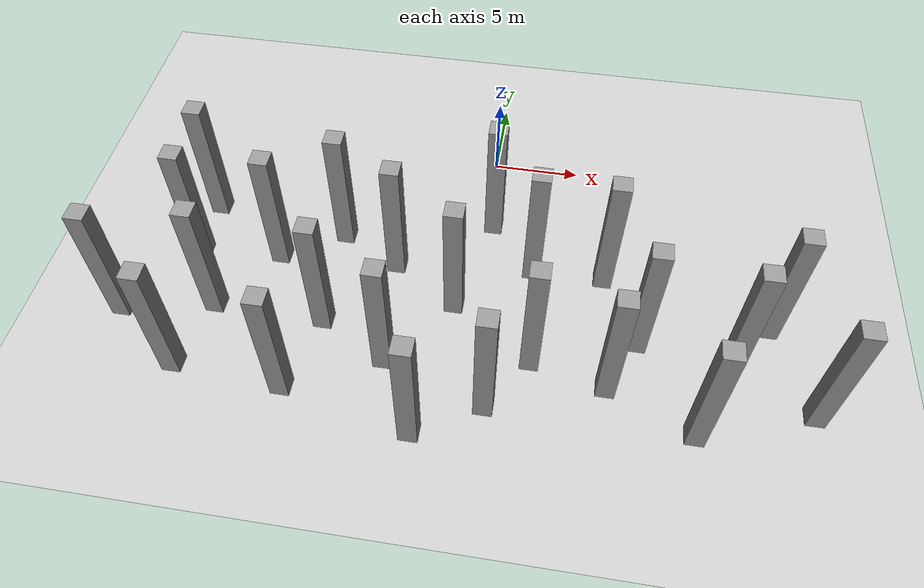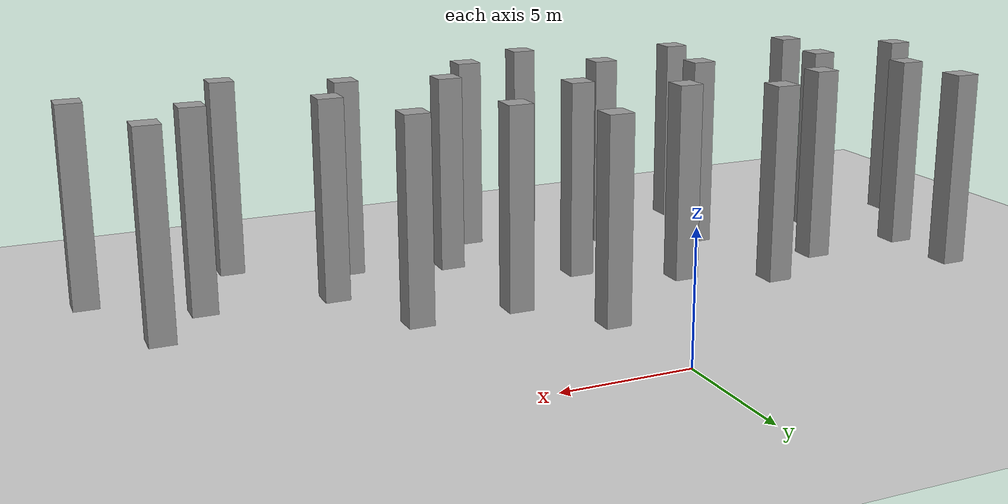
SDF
<sdf version="1.7">
 <world name="default">
  <model name="ground_plane">
   <static>1</static>
   <link name="link">
    <collision name="collision">
     <geometry><plane><normal>0 0 1</normal><size>100 100</size></plane></geometry>
     <surface>
      <contact><collide_bitmask>65535</collide_bitmask></contact>
      <friction><ode><mu>100</mu><mu2>50</mu2></ode></friction>
     </surface>
    </collision>
    <visual name="visual">
     <cast_shadows>0</cast_shadows>
     <geometry><plane><normal>0 0 1</normal><size>100 100</size></plane></geometry>
     <material>
      <script><uri>file://media/materials/scripts/gazebo.material</uri><name>Gazebo/Grey</name></script>
     </material>
    </visual>
   </link>
  </model>
  <model name="unit_box_static_clone_8">
   <link name="link">
    <inertial>
     <mass>1</mass>
     <inertia>
      <ixx>0.166667</ixx>
      <ixy>0</ixy>
      <ixz>0</ixz>
      <iyy>0.166667</iyy>
      <iyz>0</iyz>
      <izz>0.166667</izz>
     </inertia>
    </inertial>
    <visual name="visual">
     <geometry><box><size>1 1 8</size></box></geometry>
     <material>
      <script><name>Gazebo/Grey</name><uri>file://media/materials/scripts/gazebo.material</uri></script>
      <shader type="pixel"/>
     </material>
    </visual>
    <collision name="collision">
     <geometry><box><size>1 1 8</size></box></geometry>
     <surface>
      <friction>
       <ode><mu>1</mu><mu2>1</mu2><fdir1>0 0 0</fdir1><slip1>0</slip1><slip2>0</slip2></ode>
       <torsional>
        <coefficient>1</coefficient>
        <patch_radius>0</patch_radius>
        <surface_radius>0</surface_radius>
        <use_patch_radius>1</use_patch_radius>
        <ode><slip>0</slip></ode>
       </torsional>
      </friction>
      <bounce><restitution_coefficient>0</restitution_coefficient><threshold>1e+06</threshold></bounce>
      <contact>
       <collide_without_contact>0</collide_without_contact>
       <collide_without_contact_bitmask>1</collide_without_contact_bitmask>
       <collide_bitmask>1</collide_bitmask>
       <ode>
        <soft_cfm>0</soft_cfm>
        <soft_erp>0.2</soft_erp>
        <kp>1e+13</kp>
        <kd>1</kd>
        <max_vel>0.01</max_vel>
        <min_depth>0</min_depth>
       </ode>
       <bullet>
        <split_impulse>1</split_impulse>
        <split_impulse_penetration_threshold>-0.01</split_impulse_penetration_threshold>
        <soft_cfm>0</soft_cfm>
        <soft_erp>0.2</soft_erp>
        <kp>1e+13</kp>
        <kd>1</kd>
       </bullet>
      </contact>
     </surface>
    </collision>
   </link>
   <static>1</static>
   <pose>0.430119 -5 4 0 -0 0</pose>
  </model>
  <model name="unit_box_static_clone_15">
   <link name="link">
    <inertial>
     <mass>1</mass>
     <inertia>
      <ixx>0.166667</ixx>
      <ixy>0</ixy>
      <ixz>0</ixz>
      <iyy>0.166667</iyy>
      <iyz>0</iyz>
      <izz>0.166667</izz>
     </inertia>
    </inertial>
    <visual name="visual">
     <geometry><box><size>1 1 8</size></box></geometry>
     <material>
      <script><name>Gazebo/Grey</name><uri>file://media/materials/scripts/gazebo.material</uri></script>
      <shader type="pixel"/>
     </material>
    </visual>
    <collision name="collision">
     <geometry><box><size>1 1 8</size></box></geometry>
     <surface>
      <friction>
       <ode><mu>1</mu><mu2>1</mu2><fdir1>0 0 0</fdir1><slip1>0</slip1><slip2>0</slip2></ode>
       <torsional>
        <coefficient>1</coefficient>
        <patch_radius>0</patch_radius>
        <surface_radius>0</surface_radius>
        <use_patch_radius>1</use_patch_radius>
        <ode><slip>0</slip></ode>
       </torsional>
      </friction>
      <bounce><restitution_coefficient>0</restitution_coefficient><threshold>1e+06</threshold></bounce>
      <contact>
       <collide_without_contact>0</collide_without_contact>
       <collide_without_contact_bitmask>1</collide_without_contact_bitmask>
       <collide_bitmask>1</collide_bitmask>
       <ode>
        <soft_cfm>0</soft_cfm>
        <soft_erp>0.2</soft_erp>
        <kp>1e+13</kp>
        <kd>1</kd>
        <max_vel>0.01</max_vel>
        <min_depth>0</min_depth>
       </ode>
       <bullet>
        <split_impulse>1</split_impulse>
        <split_impulse_penetration_threshold>-0.01</split_impulse_penetration_threshold>
        <soft_cfm>0</soft_cfm>
        <soft_erp>0.2</soft_erp>
        <kp>1e+13</kp>
        <kd>1</kd>
       </bullet>
      </contact>
     </surface>
    </collision>
   </link>
   <static>1</static>
   <pose>7 -8 4 0 -0 0</pose>
  </model>
  <model name="unit_box_static_clone_16">
   <link name="link">
    <inertial>
     <mass>1</mass>
     <inertia>
      <ixx>0.166667</ixx>
      <ixy>0</ixy>
      <ixz>0</ixz>
      <iyy>0.166667</iyy>
      <iyz>0</iyz>
      <izz>0.166667</izz>
     </inertia>
    </inertial>
    <visual name="visual">
     <geometry><box><size>1 1 8</size></box></geometry>
     <material>
      <script><name>Gazebo/Grey</name><uri>file://media/materials/scripts/gazebo.material</uri></script>
      <shader type="pixel"/>
     </material>
    </visual>
    <collision name="collision">
     <geometry><box><size>1 1 8</size></box></geometry>
     <surface>
      <friction>
       <ode><mu>1</mu><mu2>1</mu2><fdir1>0 0 0</fdir1><slip1>0</slip1><slip2>0</slip2></ode>
       <torsional>
        <coefficient>1</coefficient>
        <patch_radius>0</patch_radius>
        <surface_radius>0</surface_radius>
        <use_patch_radius>1</use_patch_radius>
        <ode><slip>0</slip></ode>
       </torsional>
      </friction>
      <bounce><restitution_coefficient>0</restitution_coefficient><threshold>1e+06</threshold></bounce>
      <contact>
       <collide_without_contact>0</collide_without_contact>
       <collide_without_contact_bitmask>1</collide_without_contact_bitmask>
       <collide_bitmask>1</collide_bitmask>
       <ode>
        <soft_cfm>0</soft_cfm>
        <soft_erp>0.2</soft_erp>
        <kp>1e+13</kp>
        <kd>1</kd>
        <max_vel>0.01</max_vel>
        <min_depth>0</min_depth>
       </ode>
       <bullet>
        <split_impulse>1</split_impulse>
        <split_impulse_penetration_threshold>-0.01</split_impulse_penetration_threshold>
        <soft_cfm>0</soft_cfm>
        <soft_erp>0.2</soft_erp>
        <kp>1e+13</kp>
        <kd>1</kd>
       </bullet>
      </contact>
     </surface>
    </collision>
   </link>
   <static>1</static>
   <pose>3 -8 4 0 -0 0</pose>
  </model>
  <model name="unit_box_static_clone_17">
   <link name="link">
    <inertial>
     <mass>1</mass>
     <inertia>
      <ixx>0.166667</ixx>
      <ixy>0</ixy>
      <ixz>0</ixz>
      <iyy>0.166667</iyy>
      <iyz>0</iyz>
      <izz>0.166667</izz>
     </inertia>
    </inertial>
    <visual name="visual">
     <geometry><box><size>1 1 8</size></box></geometry>
     <material>
      <script><name>Gazebo/Grey</name><uri>file://media/materials/scripts/gazebo.material</uri></script>
      <shader type="pixel"/>
     </material>
    </visual>
    <collision name="collision">
     <geometry><box><size>1 1 8</size></box></geometry>
     <surface>
      <friction>
       <ode><mu>1</mu><mu2>1</mu2><fdir1>0 0 0</fdir1><slip1>0</slip1><slip2>0</slip2></ode>
       <torsional>
        <coefficient>1</coefficient>
        <patch_radius>0</patch_radius>
        <surface_radius>0</surface_radius>
        <use_patch_radius>1</use_patch_radius>
        <ode><slip>0</slip></ode>
       </torsional>
      </friction>
      <bounce><restitution_coefficient>0</restitution_coefficient><threshold>1e+06</threshold></bounce>
      <contact>
       <collide_without_contact>0</collide_without_contact>
       <collide_without_contact_bitmask>1</collide_without_contact_bitmask>
       <collide_bitmask>1</collide_bitmask>
       <ode>
        <soft_cfm>0</soft_cfm>
        <soft_erp>0.2</soft_erp>
        <kp>1e+13</kp>
        <kd>1</kd>
        <max_vel>0.01</max_vel>
        <min_depth>0</min_depth>
       </ode>
       <bullet>
        <split_impulse>1</split_impulse>
        <split_impulse_penetration_threshold>-0.01</split_impulse_penetration_threshold>
        <soft_cfm>0</soft_cfm>
        <soft_erp>0.2</soft_erp>
        <kp>1e+13</kp>
        <kd>1</kd>
       </bullet>
      </contact>
     </surface>
    </collision>
   </link>
   <static>1</static>
   <pose>-4.6344 -8.74545 4 0 -0 0</pose>
  </model>
  <model name="unit_box_static_clone_18">
   <link name="link">
    <inertial>
     <mass>1</mass>
     <inertia>
      <ixx>0.166667</ixx>
      <ixy>0</ixy>
      <ixz>0</ixz>
      <iyy>0.166667</iyy>
      <iyz>0</iyz>
      <izz>0.166667</izz>
     </inertia>
    </inertial>
    <visual name="visual">
     <geometry><box><size>1 1 8</size></box></geometry>
     <material>
      <script><name>Gazebo/Grey</name><uri>file://media/materials/scripts/gazebo.material</uri></script>
      <shader type="pixel"/>
     </material>
    </visual>
    <collision name="collision">
     <geometry><box><size>1 1 8</size></box></geometry>
     <surface>
      <friction>
       <ode><mu>1</mu><mu2>1</mu2><fdir1>0 0 0</fdir1><slip1>0</slip1><slip2>0</slip2></ode>
       <torsional>
        <coefficient>1</coefficient>
        <patch_radius>0</patch_radius>
        <surface_radius>0</surface_radius>
        <use_patch_radius>1</use_patch_radius>
        <ode><slip>0</slip></ode>
       </torsional>
      </friction>
      <bounce><restitution_coefficient>0</restitution_coefficient><threshold>1e+06</threshold></bounce>
      <contact>
       <collide_without_contact>0</collide_without_contact>
       <collide_without_contact_bitmask>1</collide_without_contact_bitmask>
       <collide_bitmask>1</collide_bitmask>
       <ode>
        <soft_cfm>0</soft_cfm>
        <soft_erp>0.2</soft_erp>
        <kp>1e+13</kp>
        <kd>1</kd>
        <max_vel>0.01</max_vel>
        <min_depth>0</min_depth>
       </ode>
       <bullet>
        <split_impulse>1</split_impulse>
        <split_impulse_penetration_threshold>-0.01</split_impulse_penetration_threshold>
        <soft_cfm>0</soft_cfm>
        <soft_erp>0.2</soft_erp>
        <kp>1e+13</kp>
        <kd>1</kd>
       </bullet>
      </contact>
     </surface>
    </collision>
   </link>
   <static>1</static>
   <pose>-11.3473 -9.08592 4 0 -0 0</pose>
  </model>
  <model name="unit_box_static_clone_19">
   <link name="link">
    <inertial>
     <mass>1</mass>
     <inertia>
      <ixx>0.166667</ixx>
      <ixy>0</ixy>
      <ixz>0</ixz>
      <iyy>0.166667</iyy>
      <iyz>0</iyz>
      <izz>0.166667</izz>
     </inertia>
    </inertial>
    <visual name="visual">
     <geometry><box><size>1 1 8</size></box></geometry>
     <material>
      <script><name>Gazebo/Grey</name><uri>file://media/materials/scripts/gazebo.material</uri></script>
      <shader type="pixel"/>
     </material>
    </visual>
    <collision name="collision">
     <geometry><box><size>1 1 8</size></box></geometry>
     <surface>
      <friction>
       <ode><mu>1</mu><mu2>1</mu2><fdir1>0 0 0</fdir1><slip1>0</slip1><slip2>0</slip2></ode>
       <torsional>
        <coefficient>1</coefficient>
        <patch_radius>0</patch_radius>
        <surface_radius>0</surface_radius>
        <use_patch_radius>1</use_patch_radius>
        <ode><slip>0</slip></ode>
       </torsional>
      </friction>
      <bounce><restitution_coefficient>0</restitution_coefficient><threshold>1e+06</threshold></bounce>
      <contact>
       <collide_without_contact>0</collide_without_contact>
       <collide_without_contact_bitmask>1</collide_without_contact_bitmask>
       <collide_bitmask>1</collide_bitmask>
       <ode>
        <soft_cfm>0</soft_cfm>
        <soft_erp>0.2</soft_erp>
        <kp>1e+13</kp>
        <kd>1</kd>
        <max_vel>0.01</max_vel>
        <min_depth>0</min_depth>
       </ode>
       <bullet>
        <split_impulse>1</split_impulse>
        <split_impulse_penetration_threshold>-0.01</split_impulse_penetration_threshold>
        <soft_cfm>0</soft_cfm>
        <soft_erp>0.2</soft_erp>
        <kp>1e+13</kp>
        <kd>1</kd>
       </bullet>
      </contact>
     </surface>
    </collision>
   </link>
   <static>1</static>
   <pose>-7.86466 -13.1113 4 0 -0 0</pose>
  </model>
  <model name="unit_box_static_clone_20">
   <link name="link">
    <inertial>
     <mass>1</mass>
     <inertia>
      <ixx>0.166667</ixx>
      <ixy>0</ixy>
      <ixz>0</ixz>
      <iyy>0.166667</iyy>
      <iyz>0</iyz>
      <izz>0.166667</izz>
     </inertia>
    </inertial>
    <visual name="visual">
     <geometry><box><size>1 1 8</size></box></geometry>
     <material>
      <script><name>Gazebo/Grey</name><uri>file://media/materials/scripts/gazebo.material</uri></script>
      <shader type="pixel"/>
     </material>
    </visual>
    <collision name="collision">
     <geometry><box><size>1 1 8</size></box></geometry>
     <surface>
      <friction>
       <ode><mu>1</mu><mu2>1</mu2><fdir1>0 0 0</fdir1><slip1>0</slip1><slip2>0</slip2></ode>
       <torsional>
        <coefficient>1</coefficient>
        <patch_radius>0</patch_radius>
        <surface_radius>0</surface_radius>
        <use_patch_radius>1</use_patch_radius>
        <ode><slip>0</slip></ode>
       </torsional>
      </friction>
      <bounce><restitution_coefficient>0</restitution_coefficient><threshold>1e+06</threshold></bounce>
      <contact>
       <collide_without_contact>0</collide_without_contact>
       <collide_without_contact_bitmask>1</collide_without_contact_bitmask>
       <collide_bitmask>1</collide_bitmask>
       <ode>
        <soft_cfm>0</soft_cfm>
        <soft_erp>0.2</soft_erp>
        <kp>1e+13</kp>
        <kd>1</kd>
        <max_vel>0.01</max_vel>
        <min_depth>0</min_depth>
       </ode>
       <bullet>
        <split_impulse>1</split_impulse>
        <split_impulse_penetration_threshold>-0.01</split_impulse_penetration_threshold>
        <soft_cfm>0</soft_cfm>
        <soft_erp>0.2</soft_erp>
        <kp>1e+13</kp>
        <kd>1</kd>
       </bullet>
      </contact>
     </surface>
    </collision>
   </link>
   <static>1</static>
   <pose>-4.12448 -15.073 4 0 -0 0</pose>
  </model>
  <model name="unit_box_static_clone_21">
   <link name="link">
    <inertial>
     <mass>1</mass>
     <inertia>
      <ixx>0.166667</ixx>
      <ixy>0</ixy>
      <ixz>0</ixz>
      <iyy>0.166667</iyy>
      <iyz>0</iyz>
      <izz>0.166667</izz>
     </inertia>
    </inertial>
    <visual name="visual">
     <geometry><box><size>1 1 8</size></box></geometry>
     <material>
      <script><name>Gazebo/Grey</name><uri>file://media/materials/scripts/gazebo.material</uri></script>
      <shader type="pixel"/>
     </material>
    </visual>
    <collision name="collision">
     <geometry><box><size>1 1 8</size></box></geometry>
     <surface>
      <friction>
       <ode><mu>1</mu><mu2>1</mu2><fdir1>0 0 0</fdir1><slip1>0</slip1><slip2>0</slip2></ode>
       <torsional>
        <coefficient>1</coefficient>
        <patch_radius>0</patch_radius>
        <surface_radius>0</surface_radius>
        <use_patch_radius>1</use_patch_radius>
        <ode><slip>0</slip></ode>
       </torsional>
      </friction>
      <bounce><restitution_coefficient>0</restitution_coefficient><threshold>1e+06</threshold></bounce>
      <contact>
       <collide_without_contact>0</collide_without_contact>
       <collide_without_contact_bitmask>1</collide_without_contact_bitmask>
       <collide_bitmask>1</collide_bitmask>
       <ode>
        <soft_cfm>0</soft_cfm>
        <soft_erp>0.2</soft_erp>
        <kp>1e+13</kp>
        <kd>1</kd>
        <max_vel>0.01</max_vel>
        <min_depth>0</min_depth>
       </ode>
       <bullet>
        <split_impulse>1</split_impulse>
        <split_impulse_penetration_threshold>-0.01</split_impulse_penetration_threshold>
        <soft_cfm>0</soft_cfm>
        <soft_erp>0.2</soft_erp>
        <kp>1e+13</kp>
        <kd>1</kd>
       </bullet>
      </contact>
     </surface>
    </collision>
   </link>
   <static>1</static>
   <pose>-1 -11 4 0 -0 0</pose>
  </model>
  <model name="unit_box_static_clone_22">
   <link name="link">
    <inertial>
     <mass>1</mass>
     <inertia>
      <ixx>0.166667</ixx>
      <ixy>0</ixy>
      <ixz>0</ixz>
      <iyy>0.166667</iyy>
      <iyz>0</iyz>
      <izz>0.166667</izz>
     </inertia>
    </inertial>
    <visual name="visual">
     <geometry><box><size>1 1 8</size></box></geometry>
     <material>
      <script><name>Gazebo/Grey</name><uri>file://media/materials/scripts/gazebo.material</uri></script>
      <shader type="pixel"/>
     </material>
    </visual>
    <collision name="collision">
     <geometry><box><size>1 1 8</size></box></geometry>
     <surface>
      <friction>
       <ode><mu>1</mu><mu2>1</mu2><fdir1>0 0 0</fdir1><slip1>0</slip1><slip2>0</slip2></ode>
       <torsional>
        <coefficient>1</coefficient>
        <patch_radius>0</patch_radius>
        <surface_radius>0</surface_radius>
        <use_patch_radius>1</use_patch_radius>
        <ode><slip>0</slip></ode>
       </torsional>
      </friction>
      <bounce><restitution_coefficient>0</restitution_coefficient><threshold>1e+06</threshold></bounce>
      <contact>
       <collide_without_contact>0</collide_without_contact>
       <collide_without_contact_bitmask>1</collide_without_contact_bitmask>
       <collide_bitmask>1</collide_bitmask>
       <ode>
        <soft_cfm>0</soft_cfm>
        <soft_erp>0.2</soft_erp>
        <kp>1e+13</kp>
        <kd>1</kd>
        <max_vel>0.01</max_vel>
        <min_depth>0</min_depth>
       </ode>
       <bullet>
        <split_impulse>1</split_impulse>
        <split_impulse_penetration_threshold>-0.01</split_impulse_penetration_threshold>
        <soft_cfm>0</soft_cfm>
        <soft_erp>0.2</soft_erp>
        <kp>1e+13</kp>
        <kd>1</kd>
       </bullet>
      </contact>
     </surface>
    </collision>
   </link>
   <static>1</static>
   <pose>3.47998 -14 4 0 -0 0</pose>
  </model>
  <model name="unit_box_static_clone_23">
   <link name="link">
    <inertial>
     <mass>1</mass>
     <inertia>
      <ixx>0.166667</ixx>
      <ixy>0</ixy>
      <ixz>0</ixz>
      <iyy>0.166667</iyy>
      <iyz>0</iyz>
      <izz>0.166667</izz>
     </inertia>
    </inertial>
    <visual name="visual">
     <geometry><box><size>1 1 8</size></box></geometry>
     <material>
      <script><name>Gazebo/Grey</name><uri>file://media/materials/scripts/gazebo.material</uri></script>
      <shader type="pixel"/>
     </material>
    </visual>
    <collision name="collision">
     <geometry><box><size>1 1 8</size></box></geometry>
     <surface>
      <friction>
       <ode><mu>1</mu><mu2>1</mu2><fdir1>0 0 0</fdir1><slip1>0</slip1><slip2>0</slip2></ode>
       <torsional>
        <coefficient>1</coefficient>
        <patch_radius>0</patch_radius>
        <surface_radius>0</surface_radius>
        <use_patch_radius>1</use_patch_radius>
        <ode><slip>0</slip></ode>
       </torsional>
      </friction>
      <bounce><restitution_coefficient>0</restitution_coefficient><threshold>1e+06</threshold></bounce>
      <contact>
       <collide_without_contact>0</collide_without_contact>
       <collide_without_contact_bitmask>1</collide_without_contact_bitmask>
       <collide_bitmask>1</collide_bitmask>
       <ode>
        <soft_cfm>0</soft_cfm>
        <soft_erp>0.2</soft_erp>
        <kp>1e+13</kp>
        <kd>1</kd>
        <max_vel>0.01</max_vel>
        <min_depth>0</min_depth>
       </ode>
       <bullet>
        <split_impulse>1</split_impulse>
        <split_impulse_penetration_threshold>-0.01</split_impulse_penetration_threshold>
        <soft_cfm>0</soft_cfm>
        <soft_erp>0.2</soft_erp>
        <kp>1e+13</kp>
        <kd>1</kd>
       </bullet>
      </contact>
     </surface>
    </collision>
   </link>
   <static>1</static>
   <pose>9 -12 4 0 -0 0</pose>
  </model>
  <model name="unit_box_static_clone_24">
   <link name="link">
    <inertial>
     <mass>1</mass>
     <inertia>
      <ixx>0.166667</ixx>
      <ixy>0</ixy>
      <ixz>0</ixz>
      <iyy>0.166667</iyy>
      <iyz>0</iyz>
      <izz>0.166667</izz>
     </inertia>
    </inertial>
    <visual name="visual">
     <geometry><box><size>1 1 8</size></box></geometry>
     <material>
      <script><name>Gazebo/Grey</name><uri>file://media/materials/scripts/gazebo.material</uri></script>
      <shader type="pixel"/>
     </material>
    </visual>
    <collision name="collision">
     <geometry><box><size>1 1 8</size></box></geometry>
     <surface>
      <friction>
       <ode><mu>1</mu><mu2>1</mu2><fdir1>0 0 0</fdir1><slip1>0</slip1><slip2>0</slip2></ode>
       <torsional>
        <coefficient>1</coefficient>
        <patch_radius>0</patch_radius>
        <surface_radius>0</surface_radius>
        <use_patch_radius>1</use_patch_radius>
        <ode><slip>0</slip></ode>
       </torsional>
      </friction>
      <bounce><restitution_coefficient>0</restitution_coefficient><threshold>1e+06</threshold></bounce>
      <contact>
       <collide_without_contact>0</collide_without_contact>
       <collide_without_contact_bitmask>1</collide_without_contact_bitmask>
       <collide_bitmask>1</collide_bitmask>
       <ode>
        <soft_cfm>0</soft_cfm>
        <soft_erp>0.2</soft_erp>
        <kp>1e+13</kp>
        <kd>1</kd>
        <max_vel>0.01</max_vel>
        <min_depth>0</min_depth>
       </ode>
       <bullet>
        <split_impulse>1</split_impulse>
        <split_impulse_penetration_threshold>-0.01</split_impulse_penetration_threshold>
        <soft_cfm>0</soft_cfm>
        <soft_erp>0.2</soft_erp>
        <kp>1e+13</kp>
        <kd>1</kd>
       </bullet>
      </contact>
     </surface>
    </collision>
   </link>
   <static>1</static>
   <pose>12 -17 4 0 -0 0</pose>
  </model>
  <model name="unit_box_static_clone_25">
   <link name="link">
    <inertial>
     <mass>1</mass>
     <inertia>
      <ixx>0.166667</ixx>
      <ixy>0</ixy>
      <ixz>0</ixz>
      <iyy>0.166667</iyy>
      <iyz>0</iyz>
      <izz>0.166667</izz>
     </inertia>
    </inertial>
    <visual name="visual">
     <geometry><box><size>1 1 8</size></box></geometry>
     <material>
      <script><name>Gazebo/Grey</name><uri>file://media/materials/scripts/gazebo.material</uri></script>
      <shader type="pixel"/>
     </material>
    </visual>
    <collision name="collision">
     <geometry><box><size>1 1 8</size></box></geometry>
     <surface>
      <friction>
       <ode><mu>1</mu><mu2>1</mu2><fdir1>0 0 0</fdir1><slip1>0</slip1><slip2>0</slip2></ode>
       <torsional>
        <coefficient>1</coefficient>
        <patch_radius>0</patch_radius>
        <surface_radius>0</surface_radius>
        <use_patch_radius>1</use_patch_radius>
        <ode><slip>0</slip></ode>
       </torsional>
      </friction>
      <bounce><restitution_coefficient>0</restitution_coefficient><threshold>1e+06</threshold></bounce>
      <contact>
       <collide_without_contact>0</collide_without_contact>
       <collide_without_contact_bitmask>1</collide_without_contact_bitmask>
       <collide_bitmask>1</collide_bitmask>
       <ode>
        <soft_cfm>0</soft_cfm>
        <soft_erp>0.2</soft_erp>
        <kp>1e+13</kp>
        <kd>1</kd>
        <max_vel>0.01</max_vel>
        <min_depth>0</min_depth>
       </ode>
       <bullet>
        <split_impulse>1</split_impulse>
        <split_impulse_penetration_threshold>-0.01</split_impulse_penetration_threshold>
        <soft_cfm>0</soft_cfm>
        <soft_erp>0.2</soft_erp>
        <kp>1e+13</kp>
        <kd>1</kd>
       </bullet>
      </contact>
     </surface>
    </collision>
   </link>
   <static>1</static>
   <pose>14 -12.5036 4 0 -0 0</pose>
  </model>
  <model name="unit_box_static_clone_26">
   <link name="link">
    <inertial>
     <mass>1</mass>
     <inertia>
      <ixx>0.166667</ixx>
      <ixy>0</ixy>
      <ixz>0</ixz>
      <iyy>0.166667</iyy>
      <iyz>0</iyz>
      <izz>0.166667</izz>
     </inertia>
    </inertial>
    <visual name="visual">
     <geometry><box><size>1 1 8</size></box></geometry>
     <material>
      <script><name>Gazebo/Grey</name><uri>file://media/materials/scripts/gazebo.material</uri></script>
      <shader type="pixel"/>
     </material>
    </visual>
    <collision name="collision">
     <geometry><box><size>1 1 8</size></box></geometry>
     <surface>
      <friction>
       <ode><mu>1</mu><mu2>1</mu2><fdir1>0 0 0</fdir1><slip1>0</slip1><slip2>0</slip2></ode>
       <torsional>
        <coefficient>1</coefficient>
        <patch_radius>0</patch_radius>
        <surface_radius>0</surface_radius>
        <use_patch_radius>1</use_patch_radius>
        <ode><slip>0</slip></ode>
       </torsional>
      </friction>
      <bounce><restitution_coefficient>0</restitution_coefficient><threshold>1e+06</threshold></bounce>
      <contact>
       <collide_without_contact>0</collide_without_contact>
       <collide_without_contact_bitmask>1</collide_without_contact_bitmask>
       <collide_bitmask>1</collide_bitmask>
       <ode>
        <soft_cfm>0</soft_cfm>
        <soft_erp>0.2</soft_erp>
        <kp>1e+13</kp>
        <kd>1</kd>
        <max_vel>0.01</max_vel>
        <min_depth>0</min_depth>
       </ode>
       <bullet>
        <split_impulse>1</split_impulse>
        <split_impulse_penetration_threshold>-0.01</split_impulse_penetration_threshold>
        <soft_cfm>0</soft_cfm>
        <soft_erp>0.2</soft_erp>
        <kp>1e+13</kp>
        <kd>1</kd>
       </bullet>
      </contact>
     </surface>
    </collision>
   </link>
   <static>1</static>
   <pose>16 -10 4 0 -0 0</pose>
  </model>
  <model name="unit_box_static_clone_35">
   <link name="link">
    <inertial>
     <mass>1</mass>
     <inertia>
      <ixx>0.166667</ixx>
      <ixy>0</ixy>
      <ixz>0</ixz>
      <iyy>0.166667</iyy>
      <iyz>0</iyz>
      <izz>0.166667</izz>
     </inertia>
    </inertial>
    <visual name="visual">
     <geometry><box><size>1 1 8</size></box></geometry>
     <material>
      <script><name>Gazebo/Grey</name><uri>file://media/materials/scripts/gazebo.material</uri></script>
      <shader type="pixel"/>
     </material>
    </visual>
    <collision name="collision">
     <geometry><box><size>1 1 8</size></box></geometry>
     <surface>
      <friction>
       <ode><mu>1</mu><mu2>1</mu2><fdir1>0 0 0</fdir1><slip1>0</slip1><slip2>0</slip2></ode>
       <torsional>
        <coefficient>1</coefficient>
        <patch_radius>0</patch_radius>
        <surface_radius>0</surface_radius>
        <use_patch_radius>1</use_patch_radius>
        <ode><slip>0</slip></ode>
       </torsional>
      </friction>
      <bounce><restitution_coefficient>0</restitution_coefficient><threshold>1e+06</threshold></bounce>
      <contact>
       <collide_without_contact>0</collide_without_contact>
       <collide_without_contact_bitmask>1</collide_without_contact_bitmask>
       <collide_bitmask>1</collide_bitmask>
       <ode>
        <soft_cfm>0</soft_cfm>
        <soft_erp>0.2</soft_erp>
        <kp>1e+13</kp>
        <kd>1</kd>
        <max_vel>0.01</max_vel>
        <min_depth>0</min_depth>
       </ode>
       <bullet>
        <split_impulse>1</split_impulse>
        <split_impulse_penetration_threshold>-0.01</split_impulse_penetration_threshold>
        <soft_cfm>0</soft_cfm>
        <soft_erp>0.2</soft_erp>
        <kp>1e+13</kp>
        <kd>1</kd>
       </bullet>
      </contact>
     </surface>
    </collision>
   </link>
   <static>1</static>
   <pose>-16 -9.41863 4 0 -0 0</pose>
  </model>
  <model name="unit_box_static_clone_36">
   <link name="link">
    <inertial>
     <mass>1</mass>
     <inertia>
      <ixx>0.166667</ixx>
      <ixy>0</ixy>
      <ixz>0</ixz>
      <iyy>0.166667</iyy>
      <iyz>0</iyz>
      <izz>0.166667</izz>
     </inertia>
    </inertial>
    <visual name="visual">
     <geometry><box><size>1 1 8</size></box></geometry>
     <material>
      <script><name>Gazebo/Grey</name><uri>file://media/materials/scripts/gazebo.material</uri></script>
      <shader type="pixel"/>
     </material>
    </visual>
    <collision name="collision">
     <geometry><box><size>1 1 8</size></box></geometry>
     <surface>
      <friction>
       <ode><mu>1</mu><mu2>1</mu2><fdir1>0 0 0</fdir1><slip1>0</slip1><slip2>0</slip2></ode>
       <torsional>
        <coefficient>1</coefficient>
        <patch_radius>0</patch_radius>
        <surface_radius>0</surface_radius>
        <use_patch_radius>1</use_patch_radius>
        <ode><slip>0</slip></ode>
       </torsional>
      </friction>
      <bounce><restitution_coefficient>0</restitution_coefficient><threshold>1e+06</threshold></bounce>
      <contact>
       <collide_without_contact>0</collide_without_contact>
       <collide_without_contact_bitmask>1</collide_without_contact_bitmask>
       <collide_bitmask>1</collide_bitmask>
       <ode>
        <soft_cfm>0</soft_cfm>
        <soft_erp>0.2</soft_erp>
        <kp>1e+13</kp>
        <kd>1</kd>
        <max_vel>0.01</max_vel>
        <min_depth>0</min_depth>
       </ode>
       <bullet>
        <split_impulse>1</split_impulse>
        <split_impulse_penetration_threshold>-0.01</split_impulse_penetration_threshold>
        <soft_cfm>0</soft_cfm>
        <soft_erp>0.2</soft_erp>
        <kp>1e+13</kp>
        <kd>1</kd>
       </bullet>
      </contact>
     </surface>
    </collision>
   </link>
   <static>1</static>
   <pose>-19 -14 4 0 -0 0</pose>
  </model>
  <model name="unit_box_static_clone_37">
   <link name="link">
    <inertial>
     <mass>1</mass>
     <inertia>
      <ixx>0.166667</ixx>
      <ixy>0</ixy>
      <ixz>0</ixz>
      <iyy>0.166667</iyy>
      <iyz>0</iyz>
      <izz>0.166667</izz>
     </inertia>
    </inertial>
    <visual name="visual">
     <geometry><box><size>1 1 8</size></box></geometry>
     <material>
      <script><name>Gazebo/Grey</name><uri>file://media/materials/scripts/gazebo.material</uri></script>
      <shader type="pixel"/>
     </material>
    </visual>
    <collision name="collision">
     <geometry><box><size>1 1 8</size></box></geometry>
     <surface>
      <friction>
       <ode><mu>1</mu><mu2>1</mu2><fdir1>0 0 0</fdir1><slip1>0</slip1><slip2>0</slip2></ode>
       <torsional>
        <coefficient>1</coefficient>
        <patch_radius>0</patch_radius>
        <surface_radius>0</surface_radius>
        <use_patch_radius>1</use_patch_radius>
        <ode><slip>0</slip></ode>
       </torsional>
      </friction>
      <bounce><restitution_coefficient>0</restitution_coefficient><threshold>1e+06</threshold></bounce>
      <contact>
       <collide_without_contact>0</collide_without_contact>
       <collide_without_contact_bitmask>1</collide_without_contact_bitmask>
       <collide_bitmask>1</collide_bitmask>
       <ode>
        <soft_cfm>0</soft_cfm>
        <soft_erp>0.2</soft_erp>
        <kp>1e+13</kp>
        <kd>1</kd>
        <max_vel>0.01</max_vel>
        <min_depth>0</min_depth>
       </ode>
       <bullet>
        <split_impulse>1</split_impulse>
        <split_impulse_penetration_threshold>-0.01</split_impulse_penetration_threshold>
        <soft_cfm>0</soft_cfm>
        <soft_erp>0.2</soft_erp>
        <kp>1e+13</kp>
        <kd>1</kd>
       </bullet>
      </contact>
     </surface>
    </collision>
   </link>
   <static>1</static>
   <pose>-15 -17 4 0 -0 0</pose>
  </model>
  <model name="unit_box_static_clone_38">
   <link name="link">
    <inertial>
     <mass>1</mass>
     <inertia>
      <ixx>0.166667</ixx>
      <ixy>0</ixy>
      <ixz>0</ixz>
      <iyy>0.166667</iyy>
      <iyz>0</iyz>
      <izz>0.166667</izz>
     </inertia>
    </inertial>
    <visual name="visual">
     <geometry><box><size>1 1 8</size></box></geometry>
     <material>
      <script><name>Gazebo/Grey</name><uri>file://media/materials/scripts/gazebo.material</uri></script>
      <shader type="pixel"/>
     </material>
    </visual>
    <collision name="collision">
     <geometry><box><size>1 1 8</size></box></geometry>
     <surface>
      <friction>
       <ode><mu>1</mu><mu2>1</mu2><fdir1>0 0 0</fdir1><slip1>0</slip1><slip2>0</slip2></ode>
       <torsional>
        <coefficient>1</coefficient>
        <patch_radius>0</patch_radius>
        <surface_radius>0</surface_radius>
        <use_patch_radius>1</use_patch_radius>
        <ode><slip>0</slip></ode>
       </torsional>
      </friction>
      <bounce><restitution_coefficient>0</restitution_coefficient><threshold>1e+06</threshold></bounce>
      <contact>
       <collide_without_contact>0</collide_without_contact>
       <collide_without_contact_bitmask>1</collide_without_contact_bitmask>
       <collide_bitmask>1</collide_bitmask>
       <ode>
        <soft_cfm>0</soft_cfm>
        <soft_erp>0.2</soft_erp>
        <kp>1e+13</kp>
        <kd>1</kd>
        <max_vel>0.01</max_vel>
        <min_depth>0</min_depth>
       </ode>
       <bullet>
        <split_impulse>1</split_impulse>
        <split_impulse_penetration_threshold>-0.01</split_impulse_penetration_threshold>
        <soft_cfm>0</soft_cfm>
        <soft_erp>0.2</soft_erp>
        <kp>1e+13</kp>
        <kd>1</kd>
       </bullet>
      </contact>
     </surface>
    </collision>
   </link>
   <static>1</static>
   <pose>-14 -13 4 0 -0 0</pose>
  </model>
  <model name="unit_box_static_clone_39">
   <link name="link">
    <inertial>
     <mass>1</mass>
     <inertia>
      <ixx>0.166667</ixx>
      <ixy>0</ixy>
      <ixz>0</ixz>
      <iyy>0.166667</iyy>
      <iyz>0</iyz>
      <izz>0.166667</izz>
     </inertia>
    </inertial>
    <visual name="visual">
     <geometry><box><size>1 1 8</size></box></geometry>
     <material>
      <script><name>Gazebo/Grey</name><uri>file://media/materials/scripts/gazebo.material</uri></script>
      <shader type="pixel"/>
     </material>
    </visual>
    <collision name="collision">
     <geometry><box><size>1 1 8</size></box></geometry>
     <surface>
      <friction>
       <ode><mu>1</mu><mu2>1</mu2><fdir1>0 0 0</fdir1><slip1>0</slip1><slip2>0</slip2></ode>
       <torsional>
        <coefficient>1</coefficient>
        <patch_radius>0</patch_radius>
        <surface_radius>0</surface_radius>
        <use_patch_radius>1</use_patch_radius>
        <ode><slip>0</slip></ode>
       </torsional>
      </friction>
      <bounce><restitution_coefficient>0</restitution_coefficient><threshold>1e+06</threshold></bounce>
      <contact>
       <collide_without_contact>0</collide_without_contact>
       <collide_without_contact_bitmask>1</collide_without_contact_bitmask>
       <collide_bitmask>1</collide_bitmask>
       <ode>
        <soft_cfm>0</soft_cfm>
        <soft_erp>0.2</soft_erp>
        <kp>1e+13</kp>
        <kd>1</kd>
        <max_vel>0.01</max_vel>
        <min_depth>0</min_depth>
       </ode>
       <bullet>
        <split_impulse>1</split_impulse>
        <split_impulse_penetration_threshold>-0.01</split_impulse_penetration_threshold>
        <soft_cfm>0</soft_cfm>
        <soft_erp>0.2</soft_erp>
        <kp>1e+13</kp>
        <kd>1</kd>
       </bullet>
      </contact>
     </surface>
    </collision>
   </link>
   <static>1</static>
   <pose>-9 -17.4566 4 0 -0 0</pose>
  </model>
  <model name="unit_box_static_clone_40">
   <link name="link">
    <inertial>
     <mass>1</mass>
     <inertia>
      <ixx>0.166667</ixx>
      <ixy>0</ixy>
      <ixz>0</ixz>
      <iyy>0.166667</iyy>
      <iyz>0</iyz>
      <izz>0.166667</izz>
     </inertia>
    </inertial>
    <visual name="visual">
     <geometry><box><size>1 1 8</size></box></geometry>
     <material>
      <script><name>Gazebo/Grey</name><uri>file://media/materials/scripts/gazebo.material</uri></script>
      <shader type="pixel"/>
     </material>
    </visual>
    <collision name="collision">
     <geometry><box><size>1 1 8</size></box></geometry>
     <surface>
      <friction>
       <ode><mu>1</mu><mu2>1</mu2><fdir1>0 0 0</fdir1><slip1>0</slip1><slip2>0</slip2></ode>
       <torsional>
        <coefficient>1</coefficient>
        <patch_radius>0</patch_radius>
        <surface_radius>0</surface_radius>
        <use_patch_radius>1</use_patch_radius>
        <ode><slip>0</slip></ode>
       </torsional>
      </friction>
      <bounce><restitution_coefficient>0</restitution_coefficient><threshold>1e+06</threshold></bounce>
      <contact>
       <collide_without_contact>0</collide_without_contact>
       <collide_without_contact_bitmask>1</collide_without_contact_bitmask>
       <collide_bitmask>1</collide_bitmask>
       <ode>
        <soft_cfm>0</soft_cfm>
        <soft_erp>0.2</soft_erp>
        <kp>1e+13</kp>
        <kd>1</kd>
        <max_vel>0.01</max_vel>
        <min_depth>0</min_depth>
       </ode>
       <bullet>
        <split_impulse>1</split_impulse>
        <split_impulse_penetration_threshold>-0.01</split_impulse_penetration_threshold>
        <soft_cfm>0</soft_cfm>
        <soft_erp>0.2</soft_erp>
        <kp>1e+13</kp>
        <kd>1</kd>
       </bullet>
      </contact>
     </surface>
    </collision>
   </link>
   <static>1</static>
   <pose>-2 -19 4 0 -0 0</pose>
  </model>
  <model name="unit_box_static_clone_41">
   <link name="link">
    <inertial>
     <mass>1</mass>
     <inertia>
      <ixx>0.166667</ixx>
      <ixy>0</ixy>
      <ixz>0</ixz>
      <iyy>0.166667</iyy>
      <iyz>0</iyz>
      <izz>0.166667</izz>
     </inertia>
    </inertial>
    <visual name="visual">
     <geometry><box><size>1 1 8</size></box></geometry>
     <material>
      <script><name>Gazebo/Grey</name><uri>file://media/materials/scripts/gazebo.material</uri></script>
      <shader type="pixel"/>
     </material>
    </visual>
    <collision name="collision">
     <geometry><box><size>1 1 8</size></box></geometry>
     <surface>
      <friction>
       <ode><mu>1</mu><mu2>1</mu2><fdir1>0 0 0</fdir1><slip1>0</slip1><slip2>0</slip2></ode>
       <torsional>
        <coefficient>1</coefficient>
        <patch_radius>0</patch_radius>
        <surface_radius>0</surface_radius>
        <use_patch_radius>1</use_patch_radius>
        <ode><slip>0</slip></ode>
       </torsional>
      </friction>
      <bounce><restitution_coefficient>0</restitution_coefficient><threshold>1e+06</threshold></bounce>
      <contact>
       <collide_without_contact>0</collide_without_contact>
       <collide_without_contact_bitmask>1</collide_without_contact_bitmask>
       <collide_bitmask>1</collide_bitmask>
       <ode>
        <soft_cfm>0</soft_cfm>
        <soft_erp>0.2</soft_erp>
        <kp>1e+13</kp>
        <kd>1</kd>
        <max_vel>0.01</max_vel>
        <min_depth>0</min_depth>
       </ode>
       <bullet>
        <split_impulse>1</split_impulse>
        <split_impulse_penetration_threshold>-0.01</split_impulse_penetration_threshold>
        <soft_cfm>0</soft_cfm>
        <soft_erp>0.2</soft_erp>
        <kp>1e+13</kp>
        <kd>1</kd>
       </bullet>
      </contact>
     </surface>
    </collision>
   </link>
   <static>1</static>
   <pose>1.45038 -17 4 0 -0 0</pose>
  </model>
  <model name="unit_box_static_clone_60">
   <link name="link">
    <inertial>
     <mass>1</mass>
     <inertia>
      <ixx>0.166667</ixx>
      <ixy>0</ixy>
      <ixz>0</ixz>
      <iyy>0.166667</iyy>
      <iyz>0</iyz>
      <izz>0.166667</izz>
     </inertia>
    </inertial>
    <visual name="visual">
     <geometry><box><size>1 1 8</size></box></geometry>
     <material>
      <script><name>Gazebo/Grey</name><uri>file://media/materials/scripts/gazebo.material</uri></script>
      <shader type="pixel"/>
     </material>
    </visual>
    <collision name="collision">
     <geometry><box><size>1 1 8</size></box></geometry>
     <surface>
      <friction>
       <ode><mu>1</mu><mu2>1</mu2><fdir1>0 0 0</fdir1><slip1>0</slip1><slip2>0</slip2></ode>
       <torsional>
        <coefficient>1</coefficient>
        <patch_radius>0</patch_radius>
        <surface_radius>0</surface_radius>
        <use_patch_radius>1</use_patch_radius>
        <ode><slip>0</slip></ode>
       </torsional>
      </friction>
      <bounce><restitution_coefficient>0</restitution_coefficient><threshold>1e+06</threshold></bounce>
      <contact>
       <collide_without_contact>0</collide_without_contact>
       <collide_without_contact_bitmask>1</collide_without_contact_bitmask>
       <collide_bitmask>1</collide_bitmask>
       <ode>
        <soft_cfm>0</soft_cfm>
        <soft_erp>0.2</soft_erp>
        <kp>1e+13</kp>
        <kd>1</kd>
        <max_vel>0.01</max_vel>
        <min_depth>0</min_depth>
       </ode>
       <bullet>
        <split_impulse>1</split_impulse>
        <split_impulse_penetration_threshold>-0.01</split_impulse_penetration_threshold>
        <soft_cfm>0</soft_cfm>
        <soft_erp>0.2</soft_erp>
        <kp>1e+13</kp>
        <kd>1</kd>
       </bullet>
      </contact>
     </surface>
    </collision>
   </link>
   <static>1</static>
   <pose>-16 -6 4 0 -0 0</pose>
  </model>
  <model name="unit_box_static_clone_62">
   <link name="link">
    <inertial>
     <mass>1</mass>
     <inertia>
      <ixx>0.166667</ixx>
      <ixy>0</ixy>
      <ixz>0</ixz>
      <iyy>0.166667</iyy>
      <iyz>0</iyz>
      <izz>0.166667</izz>
     </inertia>
    </inertial>
    <visual name="visual">
     <geometry><box><size>1 1 8</size></box></geometry>
     <material>
      <script><name>Gazebo/Grey</name><uri>file://media/materials/scripts/gazebo.material</uri></script>
      <shader type="pixel"/>
     </material>
    </visual>
    <collision name="collision">
     <geometry><box><size>1 1 8</size></box></geometry>
     <surface>
      <friction>
       <ode><mu>1</mu><mu2>1</mu2><fdir1>0 0 0</fdir1><slip1>0</slip1><slip2>0</slip2></ode>
       <torsional>
        <coefficient>1</coefficient>
        <patch_radius>0</patch_radius>
        <surface_radius>0</surface_radius>
        <use_patch_radius>1</use_patch_radius>
        <ode><slip>0</slip></ode>
       </torsional>
      </friction>
      <bounce><restitution_coefficient>0</restitution_coefficient><threshold>1e+06</threshold></bounce>
      <contact>
       <collide_without_contact>0</collide_without_contact>
       <collide_without_contact_bitmask>1</collide_without_contact_bitmask>
       <collide_bitmask>1</collide_bitmask>
       <ode>
        <soft_cfm>0</soft_cfm>
        <soft_erp>0.2</soft_erp>
        <kp>1e+13</kp>
        <kd>1</kd>
        <max_vel>0.01</max_vel>
        <min_depth>0</min_depth>
       </ode>
       <bullet>
        <split_impulse>1</split_impulse>
        <split_impulse_penetration_threshold>-0.01</split_impulse_penetration_threshold>
        <soft_cfm>0</soft_cfm>
        <soft_erp>0.2</soft_erp>
        <kp>1e+13</kp>
        <kd>1</kd>
       </bullet>
      </contact>
     </surface>
    </collision>
   </link>
   <static>1</static>
   <pose>-8 -7.04114 4 0 -0 0</pose>
  </model>
  <model name="unit_box_static_clone_64">
   <link name="link">
    <inertial>
     <mass>1</mass>
     <inertia>
      <ixx>0.166667</ixx>
      <ixy>0</ixy>
      <ixz>0</ixz>
      <iyy>0.166667</iyy>
      <iyz>0</iyz>
      <izz>0.166667</izz>
     </inertia>
    </inertial>
    <visual name="visual">
     <geometry><box><size>1 1 8</size></box></geometry>
     <material>
      <script><name>Gazebo/Grey</name><uri>file://media/materials/scripts/gazebo.material</uri></script>
      <shader type="pixel"/>
     </material>
    </visual>
    <collision name="collision">
     <geometry><box><size>1 1 8</size></box></geometry>
     <surface>
      <friction>
       <ode><mu>1</mu><mu2>1</mu2><fdir1>0 0 0</fdir1><slip1>0</slip1><slip2>0</slip2></ode>
       <torsional>
        <coefficient>1</coefficient>
        <patch_radius>0</patch_radius>
        <surface_radius>0</surface_radius>
        <use_patch_radius>1</use_patch_radius>
        <ode><slip>0</slip></ode>
       </torsional>
      </friction>
      <bounce><restitution_coefficient>0</restitution_coefficient><threshold>1e+06</threshold></bounce>
      <contact>
       <collide_without_contact>0</collide_without_contact>
       <collide_without_contact_bitmask>1</collide_without_contact_bitmask>
       <collide_bitmask>1</collide_bitmask>
       <ode>
        <soft_cfm>0</soft_cfm>
        <soft_erp>0.2</soft_erp>
        <kp>1e+13</kp>
        <kd>1</kd>
        <max_vel>0.01</max_vel>
        <min_depth>0</min_depth>
       </ode>
       <bullet>
        <split_impulse>1</split_impulse>
        <split_impulse_penetration_threshold>-0.01</split_impulse_penetration_threshold>
        <soft_cfm>0</soft_cfm>
        <soft_erp>0.2</soft_erp>
        <kp>1e+13</kp>
        <kd>1</kd>
       </bullet>
      </contact>
     </surface>
    </collision>
   </link>
   <static>1</static>
   <pose>18 -15 4 0 -0 0</pose>
  </model>
  <model name="unit_box_static_clone_65">
   <link name="link">
    <inertial>
     <mass>1</mass>
     <inertia>
      <ixx>0.166667</ixx>
      <ixy>0</ixy>
      <ixz>0</ixz>
      <iyy>0.166667</iyy>
      <iyz>0</iyz>
      <izz>0.166667</izz>
     </inertia>
    </inertial>
    <visual name="visual">
     <geometry><box><size>1 1 8</size></box></geometry>
     <material>
      <script><name>Gazebo/Grey</name><uri>file://media/materials/scripts/gazebo.material</uri></script>
      <shader type="pixel"/>
     </material>
    </visual>
    <collision name="collision">
     <geometry><box><size>1 1 8</size></box></geometry>
     <surface>
      <friction>
       <ode><mu>1</mu><mu2>1</mu2><fdir1>0 0 0</fdir1><slip1>0</slip1><slip2>0</slip2></ode>
       <torsional>
        <coefficient>1</coefficient>
        <patch_radius>0</patch_radius>
        <surface_radius>0</surface_radius>
        <use_patch_radius>1</use_patch_radius>
        <ode><slip>0</slip></ode>
       </torsional>
      </friction>
      <bounce><restitution_coefficient>0</restitution_coefficient><threshold>1e+06</threshold></bounce>
      <contact>
       <collide_without_contact>0</collide_without_contact>
       <collide_without_contact_bitmask>1</collide_without_contact_bitmask>
       <collide_bitmask>1</collide_bitmask>
       <ode>
        <soft_cfm>0</soft_cfm>
        <soft_erp>0.2</soft_erp>
        <kp>1e+13</kp>
        <kd>1</kd>
        <max_vel>0.01</max_vel>
        <min_depth>0</min_depth>
       </ode>
       <bullet>
        <split_impulse>1</split_impulse>
        <split_impulse_penetration_threshold>-0.01</split_impulse_penetration_threshold>
        <soft_cfm>0</soft_cfm>
        <soft_erp>0.2</soft_erp>
        <kp>1e+13</kp>
        <kd>1</kd>
       </bullet>
      </contact>
     </surface>
    </collision>
   </link>
   <static>1</static>
   <pose>7.49511 -15 4 0 -0 0</pose>
  </model>
 </world>
</sdf>
